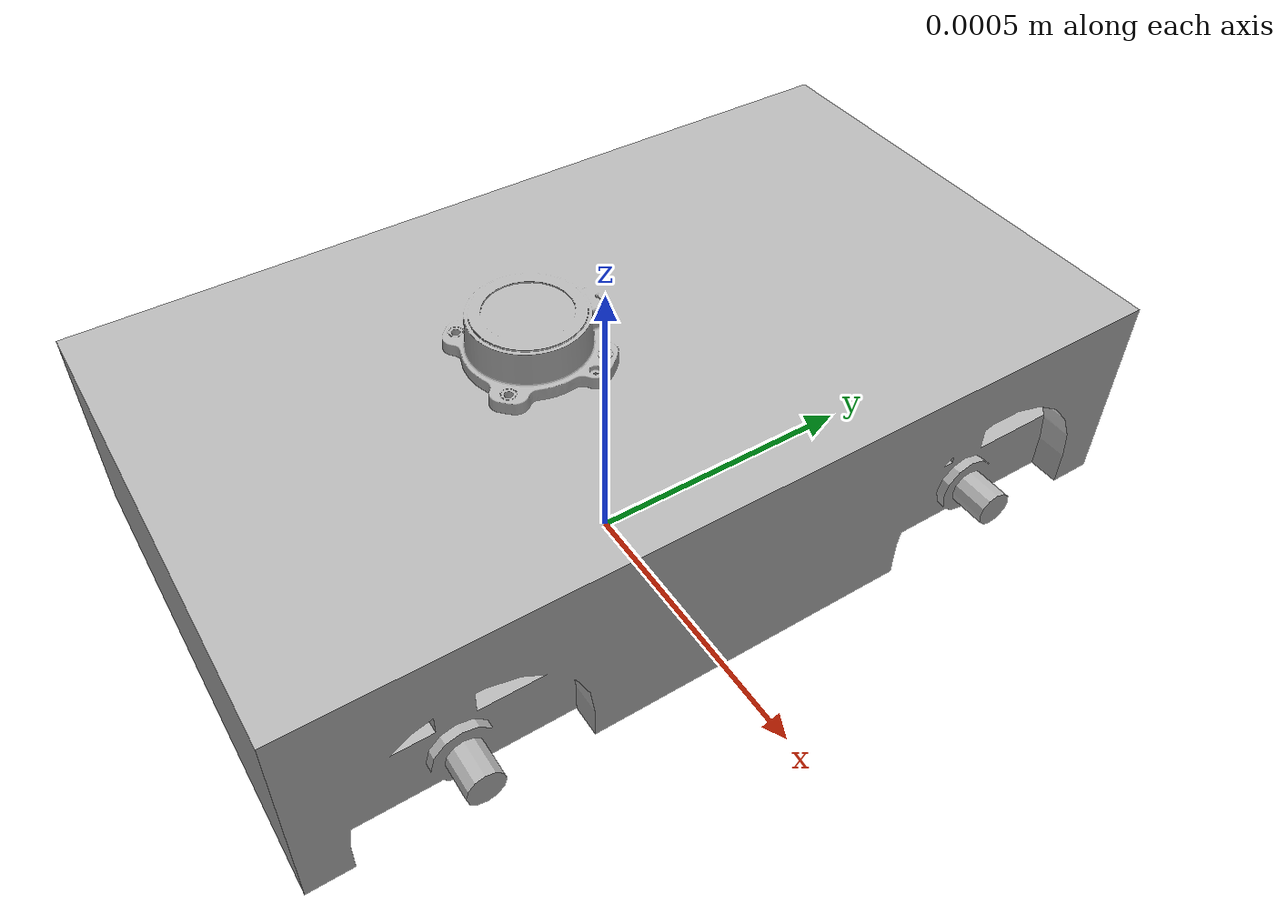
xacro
<?xml version="1.0" ?>
<robot name="robot" xmlns:xacro="http://www.ros.org/wiki/xacro">
  <material name="silver">
    <color rgba="0.700 0.700 0.700 1.000"/>
  </material>
  <gazebo>
    <plugin name="control" filename="libgazebo_ros_control.so"/>
  </gazebo>
  <gazebo reference="base_link">
    <material>
    <color rgba="1 0 0 1.0"/>
    </material>
  </gazebo>
  <link name="base_link">
    <inertial>
      <origin xyz="0.03916729747052361 0.05645002662100321 -0.18924095212512307" rpy="0 0 0"/>
      <mass value="0.5389324155793394"/>
      <inertia ixx="0.000202" iyy="0.000321" izz="0.000247" ixy="-1.6e-05" iyz="6.7e-05" ixz="-1.1e-05"/>
    </inertial>
    <visual>
      <origin xyz="0 0 0" rpy="0 0 0"/>
      <geometry>
        <mesh filename="package://robot_description/meshes/base_link.stl" scale="0.001 0.001 0.001"/>
      </geometry>
      <material name="silver"/>
    </visual>
    <collision>
      <origin xyz="0 0 0" rpy="0 0 0"/>
      <geometry>
        <mesh filename="package://robot_description/meshes/base_link.stl" scale="0.001 0.001 0.001"/>
      </geometry>
    </collision>
  </link>
</robot>
